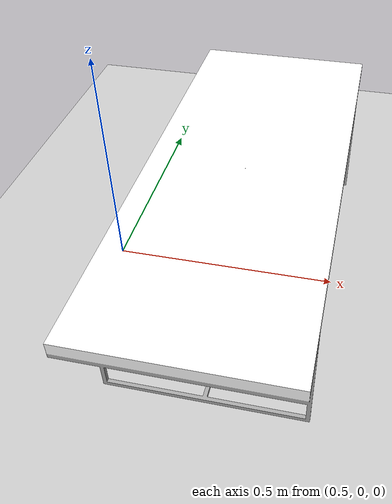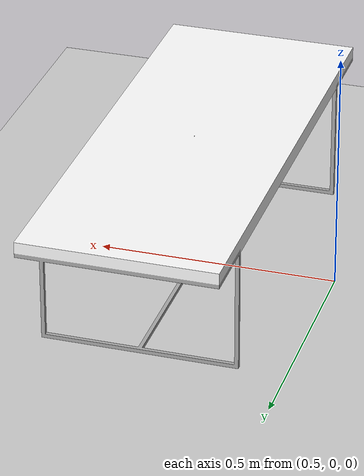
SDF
<?xml version="1.0" ?>
<sdf version="1.5">
  <world name="default">
    <include>
      <uri>model://sun</uri>
    </include>

    <include>
      <uri>model://ground_plane</uri>
    </include>

		<include>
			<uri>model://simple_table</uri>
			<pose>1.0 -0.5 0 0 0 1.57</pose>
		</include>

		<include>
			<uri>model://apple</uri>
			<pose>0.8 0.0 0.29 0 0 0</pose>
		</include>
  </world>
</sdf>

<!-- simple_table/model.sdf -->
<sdf version="1.5">
  <model name="simple_table">
	<pose>0 0 0 0 0 0</pose>
    <static>true</static>
    <link name="link">
      <collision name="collision">
		<pose>0.5 0.2 0.14 0 0 0</pose>
        <geometry>
          <box>
            <size>1 0.4 0.28</size>
          </box>
        </geometry>
      </collision>

      <visual name="visual">
        <geometry>
          <mesh>
            <uri>model://simple_table/Table.dae</uri>
          </mesh>
        </geometry>
      </visual>
    </link>
  </model>
</sdf>

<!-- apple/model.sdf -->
<sdf version="1.5">
  <model name="apple">
		<pose>0 0 0 0 0 0</pose>
    <static>true</static>
    <link name="link">
      <collision name="collision">
				<pose>0.025 0.02 0.025</pose>
        <geometry>
          <box>
            <size>0.042 0.042 0.05</size>
          </box>
        </geometry>
      </collision>

      <visual name="visual">
        <geometry>
          <mesh>
            <uri>model://apple/Apple.dae</uri>
          </mesh>
        </geometry>
      </visual>
    </link>
  </model>
</sdf>
